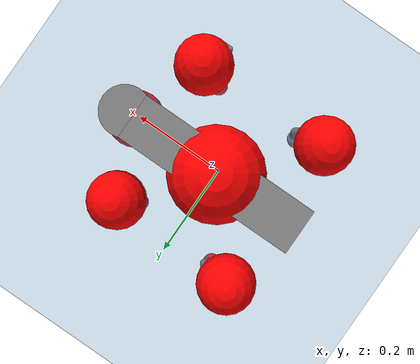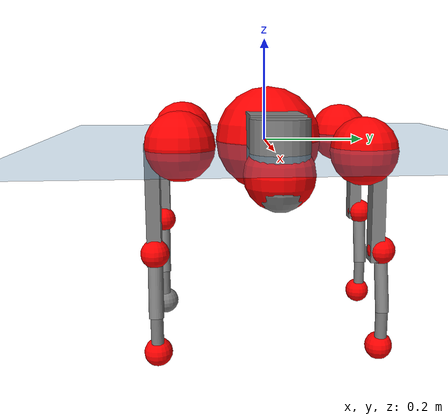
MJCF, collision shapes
<mujoco model="go2">
  <compiler angle="radian" assetdir="assets" balanceinertia="true" inertiafromgeom="false"/>

  <option timestep="0.005" density="1.2" viscosity="2e-05"/>

  <size nkey="1"/>

  <visual>
    <quality shadowsize="8192"/>
    <map shadowclip="0.5"/>
  </visual>

  <default>
    <default class="/">
      <geom contype="0" conaffinity="0" group="1" solref="-1000 -80"/>
      <site size="0.01 0.005 0.005" group="5"/>
      <general forcelimited="true" biastype="affine" gainprm="20" biasprm="0 -20 -0.5"/>
      <default class="go2">
        <joint armature="0.01" damping="0.01" frictionloss="0.2"/>
        <geom condim="1" margin="0.001"/>
        <default class="visual">
          <geom type="mesh" group="2"/>
        </default>
        <default class="collision">
          <geom group="3"/>
          <default class="foot">
            <geom size="0.022 0 0" condim="6" priority="1" friction="0.8 0.02 0.01" solimp="0.015 1 0.022"/>
          </default>
        </default>
        <default class="reward_collision_sphere">
          <geom group="5" rgba="1 0 0 1"/>
        </default>
      </default>
    </default>
  </default>

  <asset>
    <texture type="skybox" colorspace="auto" name="//unnamed_texture_0" builtin="gradient" rgb1="0.95 0.95 0.95" rgb2="0.95 0.95 0.95" width="100" height="600"/>
    <texture type="2d" colorspace="auto" name="texplane" builtin="checker" rgb1="0.345 0.575 0.748" rgb2="0.345 0.575 0.748" markrgb="1 1 1" width="512" height="512"/>
    <material name="MatPlane" class="/" texture="texplane" texuniform="true" texrepeat="2 2" specular="0.9"/>
    <material name="metal" class="/" rgba="0.9 0.95 0.95 1"/>
    <material name="black" class="/" rgba="0 0 0 1"/>
    <material name="white" class="/"/>
    <material name="gray" class="/" rgba="0.671705 0.692426 0.77427 1"/>
    <mesh name="base_0" class="/" file="base_0.obj"/>
    <mesh name="base_1" class="/" file="base_1.obj"/>
    <mesh name="base_2" class="/" file="base_2.obj"/>
    <mesh name="base_3" class="/" file="base_3.obj"/>
    <mesh name="base_4" class="/" file="base_4.obj"/>
    <mesh name="hip_0" class="/" file="hip_0.obj"/>
    <mesh name="hip_1" class="/" file="hip_1.obj"/>
    <mesh name="thigh_0" class="/" file="thigh_0.obj"/>
    <mesh name="thigh_1" class="/" file="thigh_1.obj"/>
    <mesh name="thigh_mirror_0" class="/" file="thigh_mirror_0.obj"/>
    <mesh name="thigh_mirror_1" class="/" file="thigh_mirror_1.obj"/>
    <mesh name="calf_0" class="/" file="calf_0.obj"/>
    <mesh name="calf_1" class="/" file="calf_1.obj"/>
    <mesh name="calf_mirror_0" class="/" file="calf_mirror_0.obj"/>
    <mesh name="calf_mirror_1" class="/" file="calf_mirror_1.obj"/>
    <mesh name="foot" class="/" file="foot.obj"/>
  </asset>

  <worldbody>
    <geom name="floor" class="/" size="100 100 0.125" type="plane" group="0" material="MatPlane"/>
    <light name="toplight_shadow" class="/" pos="0 0 5" dir="0.0990148 0.0990148 -0.990148" type="directional" ambient="0.04 0.04 0.04" diffuse="0.55 0.55 0.55" specular="0.12 0.12 0.12"/>
    <light name="toplight_fill" class="/" pos="0 0 5" dir="0.0990148 0.0990148 -0.990148" type="directional" castshadow="false" ambient="0.04 0.04 0.04" diffuse="0.3 0.3 0.3" specular="0.08 0.08 0.08"/>
    <body name="trunk" childclass="go2" pos="-0.00113727 0.00802512 0.000965333" quat="1 -6.74792e-05 9.00033e-07 1.61736e-05">
      <inertial pos="0.0140537 0.00875444 -0.00536222" quat="0.0190941 0.748129 0.0294569 0.662625" mass="8.42453" diaginertia="0.0301827 0.817702 0.0144512"/>
      <joint name="//unnamed_joint_0" type="free" armature="0" damping="0" frictionloss="0"/>
      <geom name="//unnamed_geom_1" class="visual" material="black" mesh="base_0"/>
      <geom name="//unnamed_geom_2" class="visual" material="black" mesh="base_1"/>
      <geom name="//unnamed_geom_3" class="visual" material="black" mesh="base_2"/>
      <geom name="//unnamed_geom_4" class="visual" material="white" mesh="base_3"/>
      <geom name="//unnamed_geom_5" class="visual" material="gray" mesh="base_4"/>
      <geom name="trunk_1" class="collision" size="0.19954 0.0495932 0.0604665" type="box"/>
      <geom name="trunk_2" class="collision" size="0.0530408 0.0477367" pos="0.2184 0 0.00899675" type="cylinder"/>
      <geom name="trunk_3" class="collision" size="0.0498584" pos="0.22453 0 -0.0539805"/>
      <geom name="//unnamed_geom_9" class="reward_collision_sphere" size="0.106082"/>
      <geom name="//unnamed_geom_10" class="reward_collision_sphere" size="0.063649" pos="0.214568 0 -0.0404854"/>
      <site name="imu" pos="-0.0580553 -0.0267219 0.0781197" size="0.0106082"/>
      <camera name="track" pos="0 -3.03292 0" quat="0.707107 0.707107 0 0" mode="trackcom"/>
      <camera name="ego_camera" pos="0.23909 0 0.0404854" quat="-0.5 -0.5 0.5 0.5"/>
      <body name="FL_hip" pos="0.141737 0.0582757 -0.0101615" quat="0.999991 0.00336218 -0.00210545 -0.00145275">
        <inertial pos="-0.00407704 0.00262982 -0.00477509" quat="0.496732 0.497974 0.508596 0.496599" mass="0.871566" diaginertia="0.000231817 0.00523321 0.000274905"/>
        <joint name="FL_hip_joint" pos="0 0 0" axis="0.999958 0.00307246 0.00857856" range="-1.298 0.949164" armature="0.0102273" damping="0.0471605" frictionloss="0.141954"/>
        <geom name="//unnamed_geom_11" class="visual" material="metal" mesh="hip_0"/>
        <geom name="//unnamed_geom_12" class="visual" material="gray" mesh="hip_1"/>
        <geom name="//unnamed_geom_13" class="collision" size="0.0487975 0.0212163" pos="0 0.121317 0" quat="0.707107 0.707107 0 0" type="cylinder"/>
        <geom name="//unnamed_geom_14" class="reward_collision_sphere" size="0.063649" pos="0 0.106152 0"/>
        <body name="FL_thigh" pos="0.00199603 0.132523 0.000442955" quat="0.999994 -0.00349842 0.000669372 0.000136006">
          <inertial pos="-0.00995496 -0.0396039 -0.0293522" quat="0.813417 0.0542845 -0.00345251 0.579133" mass="1.37323" diaginertia="0.00161744 0.0477753 0.000540749"/>
          <joint name="FL_thigh_joint" pos="0 0 0" axis="0.0416186 0.999134 -0.000177594" range="-1.65592 3.27763" armature="0.00601092" damping="0.00784015" frictionloss="0.180725"/>
          <geom name="//unnamed_geom_15" class="visual" material="metal" mesh="thigh_0"/>
          <geom name="//unnamed_geom_16" class="visual" material="gray" mesh="thigh_1"/>
          <geom name="//unnamed_geom_17" class="collision" size="0.112977 0.012995 0.0180339" pos="0 0 -0.0958154" quat="0.707107 0 0.707107 0" type="box"/>
          <body name="FL_calf" pos="0.00218904 0.0104978 -0.188752" quat="0.999997 0.0017323 0.00166446 0.000489112">
            <inertial pos="-0.00153159 -0.00133695 -0.115431" quat="0.710872 -0.00367966 -0.00298101 0.703306" mass="0.29071" diaginertia="0.000438749 0.0102732 3.63016e-05"/>
            <joint name="FL_calf_joint" pos="0 0 0" axis="0.000876004 0.999978 -0.00664236" stiffness="0.00255403" range="-2.49176 -0.807496" armature="0.0137342" damping="0.00483387" frictionloss="0.208969"/>
            <geom name="//unnamed_geom_18" class="visual" material="gray" mesh="calf_0"/>
            <geom name="//unnamed_geom_19" class="visual" material="black" mesh="calf_1"/>
            <geom name="FL_calf0" class="collision" size="0.0127298 0.063649" pos="0.00613051 0 -0.0539805" quat="0.994493 0 -0.104807 0" type="cylinder"/>
            <geom name="//unnamed_geom_21" class="collision" size="0.011669 0.0344765" pos="0.0153263 0 -0.133152" quat="0.999688 0 0.0249974 0" type="cylinder"/>
            <geom name="//unnamed_geom_22" class="visual" pos="0 0 -0.191631" quat="1 0 0 0" material="black" mesh="foot"/>
            <geom name="FL_foot" class="foot" size="0.0249848" pos="-0.00153263 0 -0.191631"/>
            <geom name="//unnamed_geom_24" class="reward_collision_sphere" size="0.0265204"/>
            <geom name="//unnamed_geom_25" class="reward_collision_sphere" size="0.0265204" pos="-0.00153263 0 -0.191631"/>
            <site name="FL_foot" class="foot" pos="-0.00153263 0 -0.191631" size="0.0106082"/>
          </body>
        </body>
      </body>
      <body name="FR_hip" pos="0.151228 -0.06615 0.00392818" quat="0.999999 0.00147827 0.000663836 6.81947e-05">
        <inertial pos="-0.00126875 -0.00381026 -0.00137723" quat="0.501685 0.500587 0.502044 0.495657" mass="0.917912" diaginertia="0.000242859 0.00560669 0.000256606"/>
        <joint name="FR_hip_joint" pos="0 0 0" axis="0.999475 0.0194583 -0.0258905" stiffness="0.0159768" range="-1.04885 1.00958" armature="0.00974493" damping="0" frictionloss="0.183911"/>
        <geom name="//unnamed_geom_26" class="visual" pos="0 5.37317e-09 2.30466e-07" quat="4.63268e-05 1 0 0" material="metal" mesh="hip_0"/>
        <geom name="//unnamed_geom_27" class="visual" pos="0 8.71054e-09 -5.70031e-07" quat="4.63268e-05 1 0 0" material="gray" mesh="hip_1"/>
        <geom name="//unnamed_geom_28" class="collision" size="0.0487975 0.0212163" pos="0 -0.121317 0" quat="0.707107 0.707107 0 0" type="cylinder"/>
        <geom name="//unnamed_geom_29" class="reward_collision_sphere" size="0.063649" pos="0 -0.106152 0"/>
        <body name="FR_thigh" pos="-0.010567 -0.156894 -0.0111029" quat="0.999998 -0.00108781 0.00140061 0.00131928">
          <inertial pos="0.00144928 0.045874 -0.030619" quat="0.566073 -0.0231106 0.0612594 0.821751" mass="1.11429" diaginertia="0.0014178 0.0416253 0.000478772"/>
          <joint name="FR_thigh_joint" pos="0 0 0" axis="-0.000868145 -0.999998 -0.00183852" stiffness="0.0140001" range="-3.27352 1.56842" armature="0.0110171" damping="0" frictionloss="0.210571"/>
          <geom name="//unnamed_geom_30" class="visual" material="metal" mesh="thigh_mirror_0"/>
          <geom name="//unnamed_geom_31" class="visual" material="gray" mesh="thigh_mirror_1"/>
          <geom name="//unnamed_geom_32" class="collision" size="0.112977 0.012995 0.0180339" pos="0 0 -0.0958154" quat="0.707107 0 0.707107 0" type="box"/>
          <body name="FR_calf" pos="0.0109546 0.00115565 -0.185669" quat="0.999989 0.00230561 0.00186624 0.00362724">
            <inertial pos="0.00181333 0.00095158 -0.134039" quat="0.695341 0.0199624 0.0139536 0.718267" mass="0.289954" diaginertia="0.000386726 0.0117718 3.02589e-05"/>
            <joint name="FR_calf_joint" pos="0 0 0" axis="-0.0216141 -0.998241 -0.055214" stiffness="0.0365146" range="0.84088 2.77099" armature="0.00541089" damping="0" frictionloss="0.31002"/>
            <geom name="//unnamed_geom_33" class="visual" material="gray" mesh="calf_mirror_0"/>
            <geom name="//unnamed_geom_34" class="visual" material="black" mesh="calf_mirror_1"/>
            <geom name="FR_calf0" class="collision" size="0.0137906 0.063649" pos="0.00766314 0 -0.0539805" quat="0.995004 0 -0.0998334 0" type="cylinder"/>
            <geom name="//unnamed_geom_36" class="collision" size="0.011669 0.0344765" pos="0.0153263 0 -0.133152" quat="0.999688 0 0.0249974 0" type="cylinder"/>
            <geom name="//unnamed_geom_37" class="visual" pos="0 0 -0.191631" quat="1 0 0 0" material="black" mesh="foot"/>
            <geom name="FR_foot" class="foot" size="0.0254879" pos="-0.00153263 0 -0.191631"/>
            <geom name="//unnamed_geom_39" class="reward_collision_sphere" size="0.0265204"/>
            <geom name="//unnamed_geom_40" class="reward_collision_sphere" size="0.0265204" pos="-0.00153263 0 -0.191631"/>
            <site name="FR_foot" class="foot" pos="-0.00153263 0 -0.191631" size="0.0106082"/>
          </body>
        </body>
      </body>
      <body name="RL_hip" pos="-0.14712 0.0701561 -0.000271685" quat="0.999999 -0.00127021 -0.000401365 -0.000196749">
        <inertial pos="0.00494422 0.0116734 -0.00521525" quat="0.503546 0.495101 0.493901 0.507324" mass="0.754734" diaginertia="0.000225339 0.00456037 0.000265891"/>
        <joint name="RL_hip_joint" pos="0 0 0" axis="-0.999625 0.0150629 0.0228624" stiffness="0.00652116" range="-1.06785 1.11679" armature="0.0105305" damping="0.00552021" frictionloss="0.20667"/>
        <geom name="//unnamed_geom_41" class="visual" pos="1.16179e-09 0 2.27737e-07" quat="4.63268e-05 0 1 0" material="metal" mesh="hip_0"/>
        <geom name="//unnamed_geom_42" class="visual" pos="1.8834e-09 0 2.01971e-07" quat="4.63268e-05 0 1 0" material="gray" mesh="hip_1"/>
        <geom name="//unnamed_geom_43" class="collision" size="0.0487975 0.0212163" pos="0 0.121317 0" quat="0.707107 0.707107 0 0" type="cylinder"/>
        <geom name="//unnamed_geom_44" class="reward_collision_sphere" size="0.063649" pos="0 0.106152 0"/>
        <body name="RL_thigh" pos="0.00612259 0.143274 0.011437" quat="1 -6.64667e-05 -0.000360186 -9.93218e-05">
          <inertial pos="-0.00173117 -0.0347603 -0.0184229" quat="0.832159 0.110768 -0.0201943 0.542986" mass="1.11882" diaginertia="0.00154256 0.0431116 0.000492846"/>
          <joint name="RL_thigh_joint" pos="0 0 0" axis="-0.00899444 0.999802 -0.0177472" range="-0.364558 4.41797" armature="0.0120951" damping="0.0516861" frictionloss="0.202704"/>
          <geom name="//unnamed_geom_45" class="visual" material="metal" mesh="thigh_0"/>
          <geom name="//unnamed_geom_46" class="visual" material="gray" mesh="thigh_1"/>
          <geom name="//unnamed_geom_47" class="collision" size="0.112977 0.012995 0.0180339" pos="0 0 -0.0958154" quat="0.707107 0 0.707107 0" type="box"/>
          <body name="RL_calf" pos="0.00653101 0.0122904 -0.193526" quat="1 0.000551637 -0.000264544 -0.000167526">
            <inertial pos="0.00380887 0.000489208 -0.127593" quat="0.710295 0.00715011 -0.00876682 0.703813" mass="0.247633" diaginertia="0.000321972 0.0107002 2.91554e-05"/>
            <joint name="RL_calf_joint" pos="0 0 0" axis="0.0340664 0.999408 -0.00489683" stiffness="0.00281084" range="-2.96047 -0.681593" armature="0.0114715" damping="0.0399626" frictionloss="0.195868"/>
            <geom name="//unnamed_geom_48" class="visual" material="gray" mesh="calf_0"/>
            <geom name="//unnamed_geom_49" class="visual" material="black" mesh="calf_1"/>
            <geom name="RL_calf0" class="collision" size="0.0137906 0.063649" pos="0.00766314 0 -0.0539805" quat="0.995004 0 -0.0998334 0" type="cylinder"/>
            <geom name="//unnamed_geom_51" class="collision" size="0.011669 0.0344765" pos="0.0153263 0 -0.133152" quat="0.999688 0 0.0249974 0" type="cylinder"/>
            <geom name="//unnamed_geom_52" class="visual" pos="0 0 -0.191631" quat="1 0 0 0" material="black" mesh="foot"/>
            <geom name="RL_foot" class="foot" size="0.0205056" pos="-0.00153263 0 -0.191631"/>
            <geom name="//unnamed_geom_54" class="reward_collision_sphere" size="0.0265204"/>
            <geom name="//unnamed_geom_55" class="reward_collision_sphere" size="0.0265204" pos="-0.00153263 0 -0.191631"/>
            <site name="RL_foot" class="foot" pos="-0.00153263 0 -0.191631" size="0.0106082"/>
          </body>
        </body>
      </body>
      <body name="RR_hip" pos="-0.150718 -0.0709711 0.00601255" quat="0.999989 -0.0018832 -0.00173595 0.00386559">
        <inertial pos="0.00255198 -0.012086 0.00634797" quat="0.503247 0.49741 0.498704 0.500619" mass="0.768639" diaginertia="0.000196751 0.00429043 0.000229129"/>
        <joint name="RR_hip_joint" pos="0 0 0" axis="-0.998812 -0.0462391 -0.015392" range="-1.05666 1.25567" armature="0.0107584" damping="0.0195137" frictionloss="0.219937"/>
        <geom name="//unnamed_geom_56" class="visual" pos="-1.13582e-09 5.37317e-09 -2.72881e-09" quat="2.14617e-09 4.63268e-05 4.63268e-05 -1" material="metal" mesh="hip_0"/>
        <geom name="//unnamed_geom_57" class="visual" pos="-1.94763e-09 8.71054e-09 7.72002e-07" quat="2.14617e-09 4.63268e-05 4.63268e-05 -1" material="gray" mesh="hip_1"/>
        <geom name="//unnamed_geom_58" class="collision" size="0.0487975 0.0212163" pos="0 -0.121317 0" quat="0.707107 0.707107 0 0" type="cylinder"/>
        <geom name="//unnamed_geom_59" class="reward_collision_sphere" size="0.063649" pos="0 -0.106152 0"/>
        <body name="RR_thigh" pos="0.00016297 -0.152017 -0.00585818" quat="0.999988 0.00302437 -0.00219979 0.00327829">
          <inertial pos="-0.00360559 0.0439976 -0.0350948" quat="0.549131 -0.0191167 0.0878808 0.830883" mass="1.50065" diaginertia="0.00170629 0.051192 0.000555321"/>
          <joint name="RR_thigh_joint" pos="0 0 0" axis="0.00907172 -0.998506 0.0538892" stiffness="0.0148141" range="-4.53931 0.419075" armature="0.00986751" damping="0.0156917" frictionloss="0.208852"/>
          <geom name="//unnamed_geom_60" class="visual" material="metal" mesh="thigh_mirror_0"/>
          <geom name="//unnamed_geom_61" class="visual" material="gray" mesh="thigh_mirror_1"/>
          <geom name="//unnamed_geom_62" class="collision" size="0.112977 0.012995 0.0180339" pos="0 0 -0.0958154" quat="0.707107 0 0.707107 0" type="box"/>
          <body name="RR_calf" pos="0.0130535 -0.0015518 -0.194489" quat="0.999998 -0.00136006 -0.00149456 -0.000391416">
            <inertial pos="-0.00776884 0.000901539 -0.125477" quat="0.696102 -0.0114552 0.0107405 0.717772" mass="0.288988" diaginertia="0.000349703 0.0122538 3.16648e-05"/>
            <joint name="RR_calf_joint" pos="0 0 0" axis="-0.0112953 -0.998496 -0.0536526" stiffness="0.024217" range="1.01803 2.51084" armature="0.0160512" damping="0" frictionloss="0.227435"/>
            <geom name="//unnamed_geom_63" class="visual" material="gray" mesh="calf_mirror_0"/>
            <geom name="//unnamed_geom_64" class="visual" material="black" mesh="calf_mirror_1"/>
            <geom name="RR_calf0" class="collision" size="0.0137906 0.063649" pos="0.00766314 0 -0.0539805" quat="0.995004 0 -0.0998334 0" type="cylinder"/>
            <geom name="//unnamed_geom_66" class="collision" size="0.011669 0.0344765" pos="0.0153263 0 -0.133152" quat="0.999688 0 0.0249974 0" type="cylinder"/>
            <geom name="//unnamed_geom_67" class="visual" pos="0 0 -0.191631" quat="1 0 0 0" material="black" mesh="foot"/>
            <geom name="RR_foot" class="foot" size="0.0282078" pos="-0.00153263 0 -0.191631"/>
            <geom name="//unnamed_geom_69" class="reward_collision_sphere" size="0.0265204"/>
            <geom name="//unnamed_geom_70" class="reward_collision_sphere" size="0.0265204" pos="-0.00153263 0 -0.191631"/>
            <site name="RR_foot" class="foot" pos="-0.00153263 0 -0.191631" size="0.0106082"/>
          </body>
        </body>
      </body>
    </body>
  </worldbody>

  <contact>
    <pair class="/" geom1="floor" geom2="FL_foot" name="//unnamed_contact_0"/>
    <pair class="/" geom1="floor" geom2="FR_foot" name="//unnamed_contact_1"/>
    <pair class="/" geom1="floor" geom2="RL_foot" name="//unnamed_contact_2"/>
    <pair class="/" geom1="floor" geom2="RR_foot" name="//unnamed_contact_3"/>
  </contact>

  <actuator>
    <general name="FL_hip" class="/" joint="FL_hip_joint" forcerange="-13.4543 13.4543" gainprm="15.5337" biasprm="0 -15.5337 -0.492313"/>
    <general name="FL_thigh" class="/" joint="FL_thigh_joint" forcerange="-31.4218 31.4218" gainprm="15.5337" biasprm="0 -15.5337 -0.492313"/>
    <general name="FL_calf" class="/" joint="FL_calf_joint" forcerange="-51.9498 51.9498" gainprm="15.5337" biasprm="0 -15.5337 -0.492313"/>
    <general name="FR_hip" class="/" joint="FR_hip_joint" forcerange="-15.0098 15.0098" gainprm="15.5337" biasprm="0 -15.5337 -0.492313"/>
    <general name="FR_thigh" class="/" joint="FR_thigh_joint" forcerange="-14.9759 14.9759" gainprm="15.5337" biasprm="0 -15.5337 -0.492313"/>
    <general name="FR_calf" class="/" joint="FR_calf_joint" forcerange="-36.3662 36.3662" gainprm="15.5337" biasprm="0 -15.5337 -0.492313"/>
    <general name="RL_hip" class="/" joint="RL_hip_joint" forcerange="-26.1591 26.1591" gainprm="15.5337" biasprm="0 -15.5337 -0.492313"/>
    <general name="RL_thigh" class="/" joint="RL_thigh_joint" forcerange="-25.6474 25.6474" gainprm="15.5337" biasprm="0 -15.5337 -0.492313"/>
    <general name="RL_calf" class="/" joint="RL_calf_joint" forcerange="-58.2737 58.2737" gainprm="15.5337" biasprm="0 -15.5337 -0.492313"/>
    <general name="RR_hip" class="/" joint="RR_hip_joint" forcerange="-36.0199 36.0199" gainprm="15.5337" biasprm="0 -15.5337 -0.492313"/>
    <general name="RR_thigh" class="/" joint="RR_thigh_joint" forcerange="-24.8301 24.8301" gainprm="15.5337" biasprm="0 -15.5337 -0.492313"/>
    <general name="RR_calf" class="/" joint="RR_calf_joint" forcerange="-50.9661 50.9661" gainprm="15.5337" biasprm="0 -15.5337 -0.492313"/>
  </actuator>

  <sensor>
    <gyro site="imu" name="imu_angular_velocity"/>
    <velocimeter site="imu" name="imu_linear_velocity"/>
    <framelinvel objtype="site" objname="FL_foot" name="FL_foot_global_linear_velocity"/>
    <framelinvel objtype="site" objname="FR_foot" name="FR_foot_global_linear_velocity"/>
    <framelinvel objtype="site" objname="RL_foot" name="RL_foot_global_linear_velocity"/>
    <framelinvel objtype="site" objname="RR_foot" name="RR_foot_global_linear_velocity"/>
  </sensor>

  <keyframe>
    <key name="home" qpos="0 0 0.325 1 0 0 0 0.1 0.8 -1.5 -0.1 -0.8 1.5 -0.1 0.8 -1.5 0.1 -0.8 1.5"/>
  </keyframe>
</mujoco>
